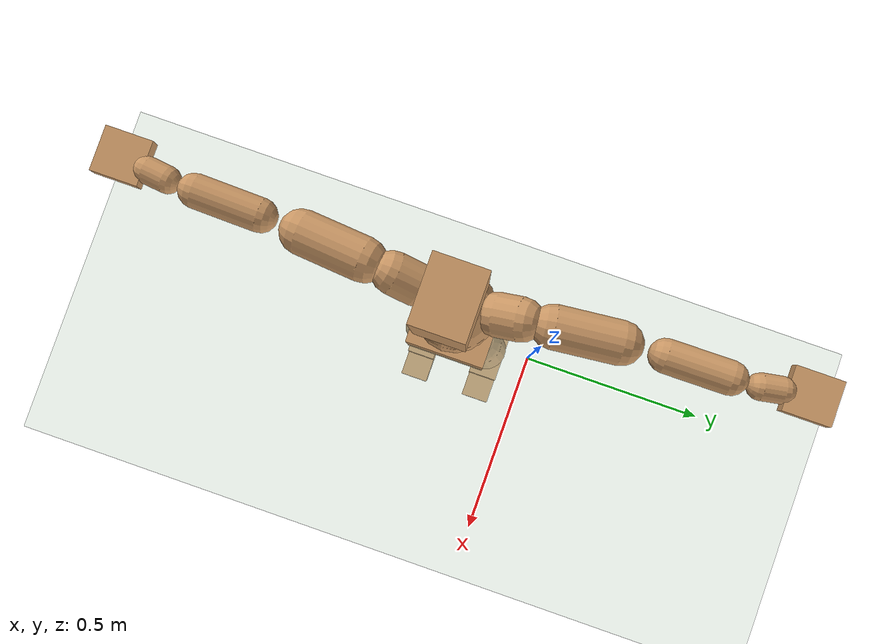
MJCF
<mujoco model="humanoid">
  <compiler coordinate="local" />
  <default>
    <joint damping="0.0" armature="0.01" stiffness="0.0" limited="true" />
    <geom conaffinity="1" condim="3" contype="7" margin="0.001" rgba="0.8 0.6 .4 1" />
  </default>
  <asset>
    <texture type="skybox" builtin="gradient" rgb1=".4 .5 .6" rgb2="0 0 0" width="100" height="100" />
    <texture builtin="flat" height="1278" mark="cross" markrgb="1 1 1" name="texgeom" random="0.01" rgb1="0.8 0.6 0.4" rgb2="0.8 0.6 0.4" type="cube" width="127" />
    <texture builtin="checker" height="100" name="texplane" rgb1="0 0 0" rgb2="0.8 0.8 0.8" type="2d" width="100" />
    <material name="MatPlane" reflectance="0.5" shininess="1" specular="1" texrepeat="60 60" texture="texplane" />
    <material name="geom" texture="texgeom" texuniform="true" />
  </asset>
  <worldbody>
    <light cutoff="100" diffuse="1 1 1" dir="-0 0 -1.3" directional="true" exponent="1" pos="0 0 1.3" specular=".1 .1 .1" />
    <geom conaffinity="1" condim="3" name="floor" pos="0 0 0" rgba="0.8 0.9 0.8 1" size="100 100 .2" type="plane" material="MatPlane" />
    <body name="Pelvis" pos="-0.0016 -0.2214 0.0293">
      <freejoint name="Pelvis" />
      <geom type="box" pos="-0.0096 -0.0000 -0.0124" size="0.0844 0.1117 0.0736" quat="1.0000 0.0000 0.0000 0.0000" density="1000" />
      <body name="L_Hip" pos="-0.006 0.0721 -0.0925">
        <joint name="L_Hip_x" type="hinge" pos="0 0 0" axis="1 0 0" stiffness="800" damping="80" armature="0.02" range="-180.0000 180.0000" />
        <joint name="L_Hip_y" type="hinge" pos="0 0 0" axis="0 1 0" stiffness="800" damping="80" armature="0.02" range="-180.0000 180.0000" />
        <joint name="L_Hip_z" type="hinge" pos="0 0 0" axis="0 0 1" stiffness="800" damping="80" armature="0.02" range="-180.0000 180.0000" />
        <geom type="capsule" contype="1" conaffinity="1" density="2040.816327" fromto="-0.0009 0.0076 -0.0793 -0.0035 0.0303 -0.3172" size="0.0644" />
        <body name="L_Knee" pos="-0.0043 0.0378 -0.3966">
          <joint name="L_Knee_x" type="hinge" pos="0 0 0" axis="1 0 0" stiffness="800" damping="80" armature="0.02" range="-180.0000 180.0000" />
          <joint name="L_Knee_y" type="hinge" pos="0 0 0" axis="0 1 0" stiffness="800" damping="80" armature="0.02" range="-180.0000 180.0000" />
          <joint name="L_Knee_z" type="hinge" pos="0 0 0" axis="0 0 1" stiffness="800" damping="80" armature="0.02" range="-180.0000 180.0000" />
          <geom type="capsule" contype="1" conaffinity="1" density="1234.567901" fromto="-0.0091 -0.0028 -0.0843 -0.0366 -0.0111 -0.3372" size="0.0562" />
          <body name="L_Ankle" pos="-0.0457 -0.0139 -0.4215">
            <joint name="L_Ankle_x" type="hinge" pos="0 0 0" axis="1 0 0" stiffness="800" damping="80" armature="0.02" range="-180.0000 180.0000" />
            <joint name="L_Ankle_y" type="hinge" pos="0 0 0" axis="0 1 0" stiffness="800" damping="80" armature="0.02" range="-180.0000 180.0000" />
            <joint name="L_Ankle_z" type="hinge" pos="0 0 0" axis="0 0 1" stiffness="800" damping="80" armature="0.02" range="-180.0000 180.0000" />
            <geom type="box" pos="0.0248 0.0255 -0.0253" size="0.0879 0.051 0.0482" quat="1.0000 0.0000 0.0000 0.0000" density="1000" />
            <body name="L_Toe" pos="0.1233 0.0296 -0.0588">
              <joint name="L_Toe_x" type="hinge" pos="0 0 0" axis="1 0 0" stiffness="500" damping="50" armature="0.02" range="-180.0000 180.0000" />
              <joint name="L_Toe_y" type="hinge" pos="0 0 0" axis="0 1 0" stiffness="500" damping="50" armature="0.02" range="-180.0000 180.0000" />
              <joint name="L_Toe_z" type="hinge" pos="0 0 0" axis="0 0 1" stiffness="500" damping="50" armature="0.02" range="-180.0000 180.0000" />
              <geom type="box" pos="0.0256 -0.0041 0.0059" size="0.0513 0.0494 0.0206" quat="1.0000 0.0000 0.0000 0.0000" density="1000" />
            </body>
          </body>
        </body>
      </body>
      <body name="R_Hip" pos="-0.0041 -0.0702 -0.0915">
        <joint name="R_Hip_x" type="hinge" pos="0 0 0" axis="1 0 0" stiffness="800" damping="80" armature="0.02" range="-180.0000 180.0000" />
        <joint name="R_Hip_y" type="hinge" pos="0 0 0" axis="0 1 0" stiffness="800" damping="80" armature="0.02" range="-180.0000 180.0000" />
        <joint name="R_Hip_z" type="hinge" pos="0 0 0" axis="0 0 1" stiffness="800" damping="80" armature="0.02" range="-180.0000 180.0000" />
        <geom type="capsule" contype="1" conaffinity="1" density="2040.816327" fromto="-0.0019 -0.0084 -0.0807 -0.0074 -0.0336 -0.3227" size="0.0633" />
        <body name="R_Knee" pos="-0.0093 -0.0421 -0.4034">
          <joint name="R_Knee_x" type="hinge" pos="0 0 0" axis="1 0 0" stiffness="800" damping="80" armature="0.02" range="-180.0000 180.0000" />
          <joint name="R_Knee_y" type="hinge" pos="0 0 0" axis="0 1 0" stiffness="800" damping="80" armature="0.02" range="-180.0000 180.0000" />
          <joint name="R_Knee_z" type="hinge" pos="0 0 0" axis="0 0 1" stiffness="800" damping="80" armature="0.02" range="-180.0000 180.0000" />
          <geom type="capsule" contype="1" conaffinity="1" density="1234.567901" fromto="-0.0089 0.0032 -0.0844 -0.0355 0.0129 -0.3376" size="0.0562" />
          <body name="R_Ankle" pos="-0.0444 0.0161 -0.422">
            <joint name="R_Ankle_x" type="hinge" pos="0 0 0" axis="1 0 0" stiffness="800" damping="80" armature="0.02" range="-180.0000 180.0000" />
            <joint name="R_Ankle_y" type="hinge" pos="0 0 0" axis="0 1 0" stiffness="800" damping="80" armature="0.02" range="-180.0000 180.0000" />
            <joint name="R_Ankle_z" type="hinge" pos="0 0 0" axis="0 0 1" stiffness="800" damping="80" armature="0.02" range="-180.0000 180.0000" />
            <geom type="box" pos="0.0264 -0.0242 -0.0184" size="0.0895 0.0495 0.0498" quat="1.0000 0.0000 0.0000 0.0000" density="1000" />
            <body name="R_Toe" pos="0.1276 -0.0286 -0.0512">
              <joint name="R_Toe_x" type="hinge" pos="0 0 0" axis="1 0 0" stiffness="500" damping="50" armature="0.02" range="-180.0000 180.0000" />
              <joint name="R_Toe_y" type="hinge" pos="0 0 0" axis="0 1 0" stiffness="500" damping="50" armature="0.02" range="-180.0000 180.0000" />
              <joint name="R_Toe_z" type="hinge" pos="0 0 0" axis="0 0 1" stiffness="500" damping="50" armature="0.02" range="-180.0000 180.0000" />
              <geom type="box" pos="0.0236 0.0044 0.0052" size="0.051 0.049 0.0223" quat="1.0000 0.0000 0.0000 0.0000" density="1000" />
            </body>
          </body>
        </body>
      </body>
      <body name="Torso" pos="-0.0287 -0.0026 0.1107">
        <joint name="Torso_x" type="hinge" pos="0 0 0" axis="1 0 0" stiffness="1000" damping="100" armature="0.02" range="-180.0000 180.0000" />
        <joint name="Torso_y" type="hinge" pos="0 0 0" axis="0 1 0" stiffness="1000" damping="100" armature="0.02" range="-180.0000 180.0000" />
        <joint name="Torso_z" type="hinge" pos="0 0 0" axis="0 0 1" stiffness="1000" damping="100" armature="0.02" range="-180.0000 180.0000" />
        <geom type="capsule" contype="1" conaffinity="1" density="2040.816327" fromto="0.0003 0.0025 0.0607 0.0004 0.0030 0.0742" size="0.0775" />
        <body name="Spine" pos="0.0006 0.0055 0.1349">
          <joint name="Spine_x" type="hinge" pos="0 0 0" axis="1 0 0" stiffness="1000" damping="100" armature="0.02" range="-180.0000 180.0000" />
          <joint name="Spine_y" type="hinge" pos="0 0 0" axis="0 1 0" stiffness="1000" damping="100" armature="0.02" range="-180.0000 180.0000" />
          <joint name="Spine_z" type="hinge" pos="0 0 0" axis="0 0 1" stiffness="1000" damping="100" armature="0.02" range="-180.0000 180.0000" />
          <geom type="capsule" contype="1" conaffinity="1" density="2040.816327" fromto="0.0112 0.0006 0.0240 0.0137 0.0007 0.0293" size="0.076" />
          <body name="Chest" pos="0.0248 0.0012 0.0533">
            <joint name="Chest_x" type="hinge" pos="0 0 0" axis="1 0 0" stiffness="1000" damping="100" armature="0.02" range="-180.0000 180.0000" />
            <joint name="Chest_y" type="hinge" pos="0 0 0" axis="0 1 0" stiffness="1000" damping="100" armature="0.02" range="-180.0000 180.0000" />
            <joint name="Chest_z" type="hinge" pos="0 0 0" axis="0 0 1" stiffness="1000" damping="100" armature="0.02" range="-180.0000 180.0000" />
            <geom type="capsule" contype="1" conaffinity="1" density="2040.816327" fromto="-0.0163 -0.0009 0.0697 -0.0200 -0.0011 0.0852" size="0.1021" />
            <body name="Neck" pos="-0.0387 -0.0031 0.2192">
              <joint name="Neck_x" type="hinge" pos="0 0 0" axis="1 0 0" stiffness="500" damping="50" armature="0.02" range="-180.0000 180.0000" />
              <joint name="Neck_y" type="hinge" pos="0 0 0" axis="0 1 0" stiffness="500" damping="50" armature="0.02" range="-180.0000 180.0000" />
              <joint name="Neck_z" type="hinge" pos="0 0 0" axis="0 0 1" stiffness="500" damping="50" armature="0.02" range="-180.0000 180.0000" />
              <geom type="capsule" contype="1" conaffinity="1" density="1000" fromto="0.0106 0.0011 0.0135 0.0424 0.0044 0.0540" size="0.0444" />
              <body name="Head" pos="0.053 0.0055 0.0675">
                <joint name="Head_x" type="hinge" pos="0 0 0" axis="1 0 0" stiffness="500" damping="50" armature="0.02" range="-180.0000 180.0000" />
                <joint name="Head_y" type="hinge" pos="0 0 0" axis="0 1 0" stiffness="500" damping="50" armature="0.02" range="-180.0000 180.0000" />
                <joint name="Head_z" type="hinge" pos="0 0 0" axis="0 0 1" stiffness="500" damping="50" armature="0.02" range="-180.0000 180.0000" />
                <geom type="box" pos="-0.0114 -0.0041 0.0890" size="0.0772 0.0614 0.1171" quat="1.0000 0.0000 0.0000 0.0000" density="1000" />

              </body>
            </body>
            <body name="L_Thorax" pos="-0.0327 0.0808 0.1242">
              <joint name="L_Thorax_x" type="hinge" pos="0 0 0" axis="1 0 0" stiffness="500" damping="50" armature="0.02" range="-180.0000 180.0000" />
              <joint name="L_Thorax_y" type="hinge" pos="0 0 0" axis="0 1 0" stiffness="500" damping="50" armature="0.02" range="-180.0000 180.0000" />
              <joint name="L_Thorax_z" type="hinge" pos="0 0 0" axis="0 0 1" stiffness="500" damping="50" armature="0.02" range="-180.0000 180.0000" />
              <geom type="capsule" contype="1" conaffinity="1" density="1000" fromto="-0.0019 0.0186 0.0066 -0.0075 0.0746 0.0264" size="0.0539" />
              <body name="L_Shoulder" pos="-0.0094 0.0932 0.033">
                <joint name="L_Shoulder_x" type="hinge" pos="0 0 0" axis="1 0 0" stiffness="500" damping="50" armature="0.02" range="-720.0000 720.0000" />
                <joint name="L_Shoulder_y" type="hinge" pos="0 0 0" axis="0 1 0" stiffness="500" damping="50" armature="0.02" range="-720.0000 720.0000" />
                <joint name="L_Shoulder_z" type="hinge" pos="0 0 0" axis="0 0 1" stiffness="500" damping="50" armature="0.02" range="-720.0000 720.0000" />
                <geom type="capsule" contype="1" conaffinity="1" density="1000" fromto="-0.0058 0.0543 -0.0032 -0.0233 0.2171 -0.0129" size="0.0539" />
                <body name="L_Elbow" pos="-0.0292 0.2714 -0.0162">
                  <joint name="L_Elbow_x" type="hinge" pos="0 0 0" axis="1 0 0" stiffness="500" damping="50" armature="0.02" range="-720.0000 720.0000" />
                  <joint name="L_Elbow_y" type="hinge" pos="0 0 0" axis="0 1 0" stiffness="500" damping="50" armature="0.02" range="-720.0000 720.0000" />
                  <joint name="L_Elbow_z" type="hinge" pos="0 0 0" axis="0 0 1" stiffness="500" damping="50" armature="0.02" range="-720.0000 720.0000" />
                  <geom type="capsule" contype="1" conaffinity="1" density="1000" fromto="-0.0002 0.0524 0.0021 -0.0006 0.2097 0.0084" size="0.0418" />
                  <body name="L_Wrist" pos="-0.0008 0.2621 0.0105">
                    <joint name="L_Wrist_x" type="hinge" pos="0 0 0" axis="1 0 0" stiffness="300" damping="30" armature="0.02" range="-180.0000 180.0000" />
                    <joint name="L_Wrist_y" type="hinge" pos="0 0 0" axis="0 1 0" stiffness="300" damping="30" armature="0.02" range="-180.0000 180.0000" />
                    <joint name="L_Wrist_z" type="hinge" pos="0 0 0" axis="0 0 1" stiffness="300" damping="30" armature="0.02" range="-180.0000 180.0000" />
                    <geom type="capsule" contype="1" conaffinity="1" density="1000" fromto="-0.0031 0.0175 -0.0017 -0.0125 0.0698 -0.0067" size="0.0329" />
                    <body name="L_Hand" pos="-0.0157 0.0873 -0.0084">
                      <joint name="L_Hand_x" type="hinge" pos="0 0 0" axis="1 0 0" stiffness="300" damping="30" armature="0.02" range="-180.0000 180.0000" />
                      <joint name="L_Hand_y" type="hinge" pos="0 0 0" axis="0 1 0" stiffness="300" damping="30" armature="0.02" range="-180.0000 180.0000" />
                      <joint name="L_Hand_z" type="hinge" pos="0 0 0" axis="0 0 1" stiffness="300" damping="30" armature="0.02" range="-180.0000 180.0000" />
                      <geom type="box" pos="-0.0058 0.0511 0.0010" size="0.0557 0.0605 0.0163" quat="1.0000 0.0000 0.0000 0.0000" density="1000" />
                    </body>
                  </body>
                </body>
              </body>
            </body>
            <body name="R_Thorax" pos="-0.0376 -0.0839 0.1211">
              <joint name="R_Thorax_x" type="hinge" pos="0 0 0" axis="1 0 0" stiffness="500" damping="50" armature="0.02" range="-180.0000 180.0000" />
              <joint name="R_Thorax_y" type="hinge" pos="0 0 0" axis="0 1 0" stiffness="500" damping="50" armature="0.02" range="-180.0000 180.0000" />
              <joint name="R_Thorax_z" type="hinge" pos="0 0 0" axis="0 0 1" stiffness="500" damping="50" armature="0.02" range="-180.0000 180.0000" />
              <geom type="capsule" contype="1" conaffinity="1" density="1000" fromto="-0.0018 -0.0197 0.0071 -0.0072 -0.0786 0.0283" size="0.0528" />
              <body name="R_Shoulder" pos="-0.0089 -0.0983 0.0354">
                <joint name="R_Shoulder_x" type="hinge" pos="0 0 0" axis="1 0 0" stiffness="500" damping="50" armature="0.02" range="-720.0000 720.0000" />
                <joint name="R_Shoulder_y" type="hinge" pos="0 0 0" axis="0 1 0" stiffness="500" damping="50" armature="0.02" range="-720.0000 720.0000" />
                <joint name="R_Shoulder_z" type="hinge" pos="0 0 0" axis="0 0 1" stiffness="500" damping="50" armature="0.02" range="-720.0000 720.0000" />
                <geom type="capsule" contype="1" conaffinity="1" density="1000" fromto="-0.0047 -0.0531 -0.0033 -0.0189 -0.2124 -0.0132" size="0.0553" />
                <body name="R_Elbow" pos="-0.0236 -0.2655 -0.0165">
                  <joint name="R_Elbow_x" type="hinge" pos="0 0 0" axis="1 0 0" stiffness="500" damping="50" armature="0.02" range="-720.0000 720.0000" />
                  <joint name="R_Elbow_y" type="hinge" pos="0 0 0" axis="0 1 0" stiffness="500" damping="50" armature="0.02" range="-720.0000 720.0000" />
                  <joint name="R_Elbow_z" type="hinge" pos="0 0 0" axis="0 0 1" stiffness="500" damping="50" armature="0.02" range="-720.0000 720.0000" />
                  <geom type="capsule" contype="1" conaffinity="1" density="1000" fromto="-0.0011 -0.0535 0.0017 -0.0043 -0.2141 0.0069" size="0.0421" />
                  <body name="R_Wrist" pos="-0.0053 -0.2676 0.0086">
                    <joint name="R_Wrist_x" type="hinge" pos="0 0 0" axis="1 0 0" stiffness="300" damping="30" armature="0.02" range="-180.0000 180.0000" />
                    <joint name="R_Wrist_y" type="hinge" pos="0 0 0" axis="0 1 0" stiffness="300" damping="30" armature="0.02" range="-180.0000 180.0000" />
                    <joint name="R_Wrist_z" type="hinge" pos="0 0 0" axis="0 0 1" stiffness="300" damping="30" armature="0.02" range="-180.0000 180.0000" />
                    <geom type="capsule" contype="1" conaffinity="1" density="1000" fromto="-0.0021 -0.0175 -0.0012 -0.0085 -0.0700 -0.0050" size="0.0335" />
                    <body name="R_Hand" pos="-0.0107 -0.0875 -0.0062">
                      <joint name="R_Hand_x" type="hinge" pos="0 0 0" axis="1 0 0" stiffness="300" damping="30" armature="0.02" range="-180.0000 180.0000" />
                      <joint name="R_Hand_y" type="hinge" pos="0 0 0" axis="0 1 0" stiffness="300" damping="30" armature="0.02" range="-180.0000 180.0000" />
                      <joint name="R_Hand_z" type="hinge" pos="0 0 0" axis="0 0 1" stiffness="300" damping="30" armature="0.02" range="-180.0000 180.0000" />
                      <geom type="box" pos="-0.0081 -0.0477 -0.0009" size="0.0563 0.0587 0.0169" quat="1.0000 0.0000 0.0000 0.0000" density="1000" />
                    </body>
                  </body>
                </body>
              </body>
            </body>
          </body>
        </body>
      </body>
    </body>
  </worldbody>
  <actuator>
    <motor name="L_Hip_x" joint="L_Hip_x" gear="500" />
    <motor name="L_Hip_y" joint="L_Hip_y" gear="500" />
    <motor name="L_Hip_z" joint="L_Hip_z" gear="500" />
    <motor name="L_Knee_x" joint="L_Knee_x" gear="500" />
    <motor name="L_Knee_y" joint="L_Knee_y" gear="500" />
    <motor name="L_Knee_z" joint="L_Knee_z" gear="500" />
    <motor name="L_Ankle_x" joint="L_Ankle_x" gear="500" />
    <motor name="L_Ankle_y" joint="L_Ankle_y" gear="500" />
    <motor name="L_Ankle_z" joint="L_Ankle_z" gear="500" />
    <motor name="L_Toe_x" joint="L_Toe_x" gear="500" />
    <motor name="L_Toe_y" joint="L_Toe_y" gear="500" />
    <motor name="L_Toe_z" joint="L_Toe_z" gear="500" />
    <motor name="R_Hip_x" joint="R_Hip_x" gear="500" />
    <motor name="R_Hip_y" joint="R_Hip_y" gear="500" />
    <motor name="R_Hip_z" joint="R_Hip_z" gear="500" />
    <motor name="R_Knee_x" joint="R_Knee_x" gear="500" />
    <motor name="R_Knee_y" joint="R_Knee_y" gear="500" />
    <motor name="R_Knee_z" joint="R_Knee_z" gear="500" />
    <motor name="R_Ankle_x" joint="R_Ankle_x" gear="500" />
    <motor name="R_Ankle_y" joint="R_Ankle_y" gear="500" />
    <motor name="R_Ankle_z" joint="R_Ankle_z" gear="500" />
    <motor name="R_Toe_x" joint="R_Toe_x" gear="500" />
    <motor name="R_Toe_y" joint="R_Toe_y" gear="500" />
    <motor name="R_Toe_z" joint="R_Toe_z" gear="500" />
    <motor name="Torso_x" joint="Torso_x" gear="500" />
    <motor name="Torso_y" joint="Torso_y" gear="500" />
    <motor name="Torso_z" joint="Torso_z" gear="500" />
    <motor name="Spine_x" joint="Spine_x" gear="500" />
    <motor name="Spine_y" joint="Spine_y" gear="500" />
    <motor name="Spine_z" joint="Spine_z" gear="500" />
    <motor name="Chest_x" joint="Chest_x" gear="500" />
    <motor name="Chest_y" joint="Chest_y" gear="500" />
    <motor name="Chest_z" joint="Chest_z" gear="500" />
    <motor name="Neck_x" joint="Neck_x" gear="500" />
    <motor name="Neck_y" joint="Neck_y" gear="500" />
    <motor name="Neck_z" joint="Neck_z" gear="500" />
    <motor name="Head_x" joint="Head_x" gear="500" />
    <motor name="Head_y" joint="Head_y" gear="500" />
    <motor name="Head_z" joint="Head_z" gear="500" />
    <motor name="L_Thorax_x" joint="L_Thorax_x" gear="500" />
    <motor name="L_Thorax_y" joint="L_Thorax_y" gear="500" />
    <motor name="L_Thorax_z" joint="L_Thorax_z" gear="500" />
    <motor name="L_Shoulder_x" joint="L_Shoulder_x" gear="500" />
    <motor name="L_Shoulder_y" joint="L_Shoulder_y" gear="500" />
    <motor name="L_Shoulder_z" joint="L_Shoulder_z" gear="500" />
    <motor name="L_Elbow_x" joint="L_Elbow_x" gear="500" />
    <motor name="L_Elbow_y" joint="L_Elbow_y" gear="500" />
    <motor name="L_Elbow_z" joint="L_Elbow_z" gear="500" />
    <motor name="L_Wrist_x" joint="L_Wrist_x" gear="500" />
    <motor name="L_Wrist_y" joint="L_Wrist_y" gear="500" />
    <motor name="L_Wrist_z" joint="L_Wrist_z" gear="500" />
    <motor name="L_Hand_x" joint="L_Hand_x" gear="500" />
    <motor name="L_Hand_y" joint="L_Hand_y" gear="500" />
    <motor name="L_Hand_z" joint="L_Hand_z" gear="500" />
    <motor name="R_Thorax_x" joint="R_Thorax_x" gear="500" />
    <motor name="R_Thorax_y" joint="R_Thorax_y" gear="500" />
    <motor name="R_Thorax_z" joint="R_Thorax_z" gear="500" />
    <motor name="R_Shoulder_x" joint="R_Shoulder_x" gear="500" />
    <motor name="R_Shoulder_y" joint="R_Shoulder_y" gear="500" />
    <motor name="R_Shoulder_z" joint="R_Shoulder_z" gear="500" />
    <motor name="R_Elbow_x" joint="R_Elbow_x" gear="500" />
    <motor name="R_Elbow_y" joint="R_Elbow_y" gear="500" />
    <motor name="R_Elbow_z" joint="R_Elbow_z" gear="500" />
    <motor name="R_Wrist_x" joint="R_Wrist_x" gear="500" />
    <motor name="R_Wrist_y" joint="R_Wrist_y" gear="500" />
    <motor name="R_Wrist_z" joint="R_Wrist_z" gear="500" />
    <motor name="R_Hand_x" joint="R_Hand_x" gear="500" />
    <motor name="R_Hand_y" joint="R_Hand_y" gear="500" />
    <motor name="R_Hand_z" joint="R_Hand_z" gear="500" />
  </actuator>
  <contact>
    <exclude body1="Torso" body2="Chest" />
    <exclude body1="Head" body2="Chest" />
    <exclude body1="R_Knee" body2="R_Toe" />
    <exclude body1="R_Knee" body2="L_Ankle" />
    <exclude body1="R_Knee" body2="L_Toe" />
    <exclude body1="L_Knee" body2="L_Toe" />
    <exclude body1="L_Knee" body2="R_Ankle" />
    <exclude body1="L_Knee" body2="R_Toe" />
    <exclude body1="L_Shoulder" body2="Chest" />
    <exclude body1="R_Shoulder" body2="Chest" />
  </contact>
  <sensor />
  <size njmax="700" nconmax="700" />
</mujoco>
